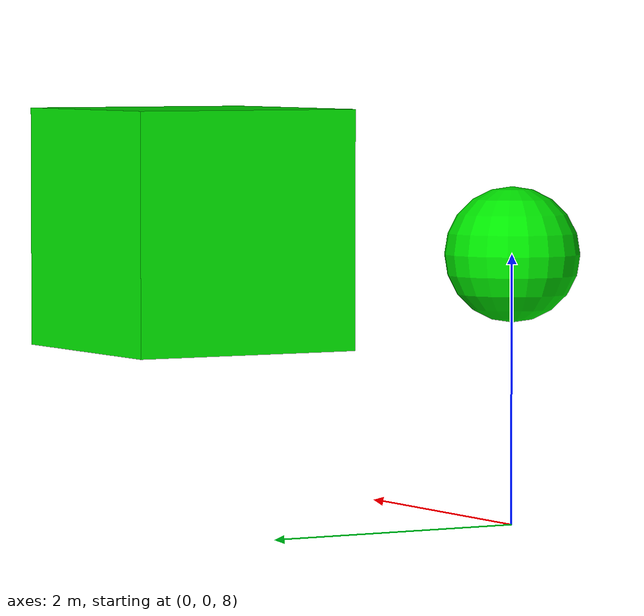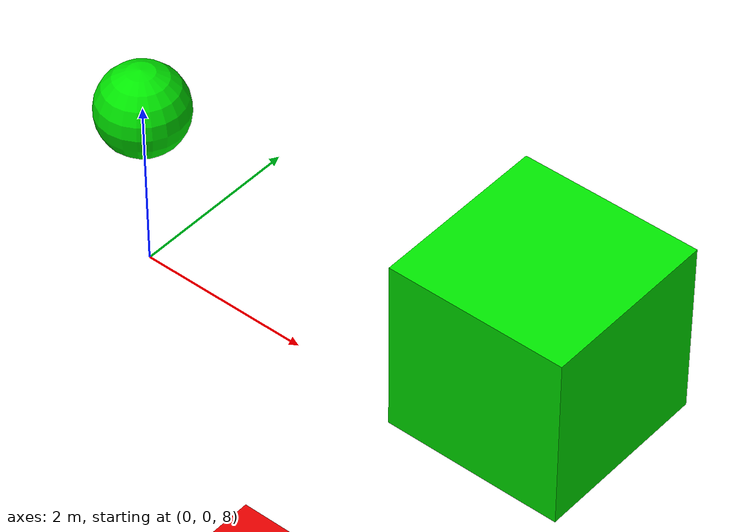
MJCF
<mujoco>
    <worldbody>
        <light diffuse=".5 .5 .5" pos="0 0 3" dir="0 0 -1"/>
        <geom type="plane" size="10 10 1" rgba=".9 0 0 1"/>
        <body pos="0 0 10">
            <joint type="free"/>
            <geom type="sphere" size=".5" rgba="0 .9 0 1"/>
        </body>
        <body pos="5 0 10">
            <joint type="free"/>
            <geom type="box" size="1 1 1" rgba="0 .9 0 1"/>
        </body>
    </worldbody>
</mujoco>
